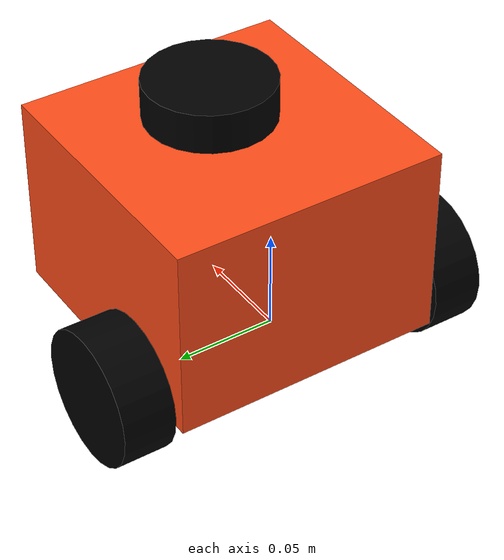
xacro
<?xml version="1.0"?>
<!-- Basic differential drive mobile base -->
<robot xmlns:xacro="http://www.ros.org/wiki/xacro" name="diffdrive_robot">
  <xacro:arg name="prefix" default="" />

  <xacro:include filename="$(find jambot_nano)/urdf/jambot_description.urdf.xacro" />

  <!-- Import Rviz colors -->
  <xacro:include filename="$(find jambot_nano)/urdf/jambot.materials.xacro" />

  <!-- Import jambot ros2_control description -->
  <xacro:include filename="$(find jambot_nano)/urdf/jambot.ros2_control.xacro" />

  <xacro:jambot prefix="$(arg prefix)" />

  <xacro:jambot_ros2_control
    name="JamBot" prefix="$(arg prefix)" />

  <!-- Gazebo ROS2 Control Plugin -->
  <gazebo>
    <plugin name="gazebo_ros2_control" filename="libgazebo_ros2_control.so">
      <parameters>$(find jambot_nano)/config/jambot_controllers.yaml</parameters>
    </plugin>
  </gazebo>

  <!-- Camera Gazebo Plugin -->
  <gazebo reference="$(arg prefix)camera_link">
    <material>Gazebo/Black</material>
    <sensor name="camera" type="camera">
      <pose>0 0 0 0 0 0</pose>
      <visualize>true</visualize>
      <update_rate>10</update_rate>
      <camera>
        <camera_info_topic>camera/camera_info</camera_info_topic>
        <horizontal_fov>1.089</horizontal_fov>
        <image>
          <format>R8G8B8</format>
          <width>640</width>
          <height>480</height>
        </image>
        <clip>
          <near>0.05</near>
          <far>8.0</far>
        </clip>
      </camera>
      <topic>camera/image_raw</topic>
      <gz_frame_id>$(arg prefix)camera_link_optical</gz_frame_id>
    </sensor>
  </gazebo>

  <!-- Lidar Gazebo Plugin -->
  <gazebo reference="$(arg prefix)laser_frame">
    <material>Gazebo/Black</material>
    <sensor name="laser" type="gpu_lidar">
      <pose>0 0 0 0 0 0</pose>
      <visualize>true</visualize>
      <update_rate>10</update_rate>
      <lidar>
        <scan>
          <horizontal>
            <samples>360</samples>
            <min_angle>-3.14</min_angle>
            <max_angle>3.14</max_angle>
          </horizontal>
        </scan>
        <range>
          <min>0.3</min>
          <max>8</max>
        </range>
      </lidar>
      <topic>scan</topic>
      <gz_frame_id>$(arg prefix)laser_frame</gz_frame_id>
    </sensor>
  </gazebo>

</robot>

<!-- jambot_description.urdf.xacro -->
<robot xmlns:xacro="http://www.ros.org/wiki/xacro">

  <xacro:macro name="jambot" params="prefix">

  <!-- Constants for robot dimensions -->
  <xacro:property name="PI" value="3.1415926535897931"/>

  <!-- Chassis properties -->
  <xacro:property name="chassis_length" value="0.14"/>
  <xacro:property name="chassis_width" value="0.14"/>
  <xacro:property name="chassis_height" value="0.1"/>
  <xacro:property name="chassis_mass" value="1.0"/>

  <!-- Wheel properties -->
  <xacro:property name="wheel_radius" value="0.034"/>
  <xacro:property name="wheel_thickness" value="0.0265"/>
  <xacro:property name="wheel_mass" value="0.05"/>
  <xacro:property name="wheel_offset_x" value="0.034"/>
  <xacro:property name="wheel_offset_y" value="0.0865"/>
  <xacro:property name="wheel_offset_z" value="0.01"/>

  <!-- Caster wheel properties -->
  <xacro:property name="caster_wheel_radius" value="0.009"/>
  <xacro:property name="caster_wheel_mass" value="0.002"/>
  <xacro:property name="caster_wheel_offset_x" value="0.12"/>
  <xacro:property name="caster_wheel_offset_z" value="${wheel_offset_z - wheel_radius + caster_wheel_radius}"/>

  <!-- Base Link -->
  <link name="${prefix}base_link">
  </link>

  <!-- Base Footprint -->
  <joint name="${prefix}base_footprint_joint" type="fixed">
    <parent link="${prefix}base_link"/>
    <child link="${prefix}base_footprint"/>
    <origin xyz="0 0 0" rpy="0 0 0"/>
  </joint>

  <link name="${prefix}base_footprint">
  </link>

  <!-- Chassis -->
  <joint name="${prefix}chassis_joint" type="fixed">
    <parent link="${prefix}base_link"/>
    <child link="${prefix}chassis"/>
    <origin xyz="${-wheel_offset_x} 0 ${-wheel_offset_z}"/>
  </joint>

  <link name="${prefix}chassis">
    <visual>
      <origin xyz="${chassis_length/2} 0 ${chassis_height/2}"/>
      <geometry>
        <box size="${chassis_length} ${chassis_width} ${chassis_height}"/>
      </geometry>
      <material name="orange"/>
    </visual>
    <collision>
      <origin xyz="${chassis_length/2} 0 ${(chassis_height/2)+0.02}"/>
      <geometry>
        <box size="${chassis_length} ${chassis_width} ${chassis_height}"/>
      </geometry>
    </collision>
    <inertial>
      <origin xyz="${chassis_length/2} 0 ${chassis_height/2}" rpy="0 0 0"/>
      <mass value="${chassis_mass}"/>
      <inertia ixx="${(1/12) * chassis_mass * (chassis_width*chassis_width + chassis_height*chassis_height)}" ixy="0.0" ixz="0.0"
              iyy="${(1/12) * chassis_mass * (chassis_length*chassis_length + chassis_height*chassis_height)}" iyz="0.0"
              izz="${(1/12) * chassis_mass * (chassis_length*chassis_length + chassis_width*chassis_width)}"/>
    </inertial>
  </link>

  <!-- Left Wheel -->
  <joint name="${prefix}left_wheel_joint" type="continuous">
    <parent link="${prefix}base_link"/>
    <child link="${prefix}left_wheel"/>
    <origin xyz="0 ${wheel_offset_y} 0" rpy="-${PI/2} 0 0"/>
    <axis xyz="0 0 1"/>
  </joint>

  <link name="${prefix}left_wheel">
    <visual>
      <geometry>
        <cylinder radius="${wheel_radius}" length="${wheel_thickness}"/>
      </geometry>
      <material name="black"/>
    </visual>
    <collision>
      <geometry>
        <sphere radius="${wheel_radius}"/>
      </geometry>
    </collision>
    <inertial>
      <origin xyz="0 0 0" rpy="0 0 0"/>
      <mass value="${wheel_mass}"/>
      <inertia ixx="${(1/12) * wheel_mass * (3*wheel_radius*wheel_radius + wheel_thickness*wheel_thickness)}" ixy="0.0" ixz="0.0"
              iyy="${(1/12) * wheel_mass * (3*wheel_radius*wheel_radius + wheel_thickness*wheel_thickness)}" iyz="0.0"
              izz="${(1/2) * wheel_mass * (wheel_radius*wheel_radius)}"/>
    </inertial>
  </link>

  <!-- Right Wheel -->
  <joint name="${prefix}right_wheel_joint" type="continuous">
    <parent link="${prefix}base_link"/>
    <child link="${prefix}right_wheel"/>
    <origin xyz="0 ${-wheel_offset_y} 0" rpy="${PI/2} 0 0"/>
    <axis xyz="0 0 -1"/>
  </joint>

  <link name="${prefix}right_wheel">
    <visual>
      <geometry>
        <cylinder radius="${wheel_radius}" length="${wheel_thickness}"/>
      </geometry>
      <material name="black"/>
    </visual>
    <collision>
      <geometry>
        <sphere radius="${wheel_radius}"/>
      </geometry>
    </collision>
    <inertial>
      <origin xyz="0 0 0" rpy="0 0 0"/>
      <mass value="${wheel_mass}"/>
      <inertia ixx="${(1/12) * wheel_mass * (3*wheel_radius*wheel_radius + wheel_thickness*wheel_thickness)}" ixy="0.0" ixz="0.0"
              iyy="${(1/12) * wheel_mass * (3*wheel_radius*wheel_radius + wheel_thickness*wheel_thickness)}" iyz="0.0"
              izz="${(1/2) * wheel_mass * (wheel_radius*wheel_radius)}"/>
    </inertial>
  </link>

  <!-- Caster Wheel -->
  <joint name="${prefix}caster_wheel_joint" type="fixed">
    <parent link="${prefix}chassis"/>
    <child link="${prefix}caster_wheel"/>
    <origin xyz="${caster_wheel_offset_x} 0 ${caster_wheel_offset_z}"/>
  </joint>

  <link name="${prefix}caster_wheel">
    <visual>
      <geometry>
        <sphere radius="${caster_wheel_radius}"/>
      </geometry>
      <material name="white"/>
    </visual>
    <collision>
      <geometry>
        <sphere radius="${caster_wheel_radius}"/>
      </geometry>
    </collision>
    <inertial>
      <origin xyz="0 0 0" rpy="0 0 0"/>
      <mass value="${caster_wheel_mass}"/>
      <inertia ixx="${(2/5) * caster_wheel_mass * (caster_wheel_radius*caster_wheel_radius)}" ixy="0.0" ixz="0.0"
              iyy="${(2/5) * caster_wheel_mass * (caster_wheel_radius*caster_wheel_radius)}" iyz="0.0"
              izz="${(2/5) * caster_wheel_mass * (caster_wheel_radius*caster_wheel_radius)}"/>
    </inertial>
  </link>

  <!-- Camera -->
  <joint name="${prefix}camera_joint" type="fixed">
    <parent link="${prefix}chassis"/>
    <child link="${prefix}camera_link"/>
    <origin xyz="0.14 0 0.05" rpy="0 0 0"/>
  </joint>

  <link name="${prefix}camera_link">
    <visual>
      <geometry>
        <box size="0.010 0.03 0.03"/>
      </geometry>
      <material name="black"/>
    </visual>
  </link>

  <joint name="${prefix}camera_optical_joint" type="fixed">
    <parent link="${prefix}camera_link"/>
    <child link="${prefix}camera_link_optical"/>
    <origin xyz="0 0 0" rpy="${-PI/2} 0 ${-PI/2}"/>
  </joint>

  <link name="${prefix}camera_link_optical"/>

  <!-- Lidar -->
  <joint name="${prefix}laser_joint" type="fixed">
    <parent link="${prefix}chassis"/>
    <child link="${prefix}laser_frame"/>
    <origin xyz="0.085 0 0.105" rpy="0 0 0"/>
  </joint>

  <link name="${prefix}laser_frame">
    <visual>
      <geometry>
        <cylinder radius="0.0325" length="0.031"/>
      </geometry>
      <material name="black"/>
    </visual>
    <visual>
      <origin xyz="0 0 -0.05"/>
      <geometry>
        <cylinder radius="0.01" length="0.1"/>
      </geometry>
      <material name="black"/>
    </visual>
    <collision>
      <geometry>
        <cylinder radius="0.05" length="0.04"/>
      </geometry>
    </collision>
    <inertial>
      <origin xyz="0 0 0" rpy="0 0 0"/>
      <mass value="0.1"/>
      <inertia ixx="${(1/12) * 0.1 * (3*0.05*0.05 + 0.04*0.04)}" ixy="0.0" ixz="0.0"
              iyy="${(1/12) * 0.1 * (3*0.05*0.05 + 0.04*0.04)}" iyz="0.0"
              izz="${(1/2) * 0.1 * (0.05*0.05)}"/>
    </inertial>
  </link>

  </xacro:macro>

</robot>

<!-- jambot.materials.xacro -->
<!--
Copied from ROS1 example:
https://github.com/ros-simulation/gazebo_ros_demos/blob/kinetic-devel/rrbot_description/urdf/materials.xacro
-->
<robot>

  <material name="black">
    <color rgba="0.0 0.0 0.0 1.0"/>
  </material>

  <material name="blue">
    <color rgba="0.2 0.2 1.0 1.0"/>
  </material>

  <material name="green">
    <color rgba="0.0 0.8 0.0 1.0"/>
  </material>

  <material name="grey">
    <color rgba="0.2 0.2 0.2 1.0"/>
  </material>

  <material name="orange">
    <color rgba="1.0 0.3 0.1 1.0"/>
  </material>

  <material name="brown">
    <color rgba="${222/255} ${207/255} ${195/255} 1.0"/>
  </material>

  <material name="red">
    <color rgba="1.0 0.0 0.0 1.0"/>
  </material>

  <material name="white">
    <color rgba="1.0 1.0 1.0 1.0"/>
  </material>

</robot>
